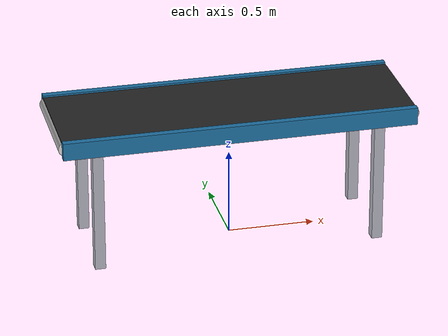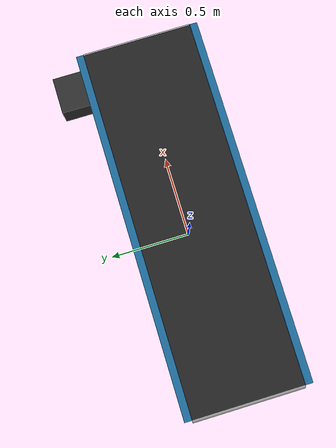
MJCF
<mujoco model="industrial_conveyor">
  <compiler angle="degree" coordinate="local"/>

  <asset>
    <material name="belt_mat" rgba="0.15 0.15 0.15 1" reflectance="0.05"/>
    <material name="frame_mat" rgba="0.12 0.45 0.65 1" reflectance="0.2"/>
    <material name="metal_mat" rgba="0.7 0.7 0.75 1" reflectance="0.5"/>
    <material name="motor_mat" rgba="0.2 0.2 0.2 1" reflectance="0.1"/>
    <material name="roller_mat" rgba="0.85 0.85 0.85 1" reflectance="0.4"/>
  </asset>

  <worldbody>
    <body name="custom_conveyor" pos="0 0 0">

      <geom name="g0" type="box" pos="0 0 0.8" size="1.0 0.3 0.01" material="belt_mat" mass="15" friction="1 0.005 0.0001"/>

      <geom name="rail_left" type="box" pos="0 0.32 0.77" size="1.0 0.02 0.05" material="frame_mat" mass="10"/>
      <geom name="rail_right" type="box" pos="0 -0.32 0.77" size="1.0 0.02 0.05" material="frame_mat" mass="10"/>

      <geom name="roller_front" type="cylinder" pos="0.98 0 0.77" size="0.04 0.3" euler="90 0 0" material="roller_mat" mass="2"/>
      <geom name="roller_back" type="cylinder" pos="-0.98 0 0.77" size="0.04 0.3" euler="90 0 0" material="roller_mat" mass="2"/>

      <geom name="roller_mid1" type="cylinder" pos="0.5 0 0.78" size="0.02 0.3" euler="90 0 0" material="metal_mat" mass="1"/>
      <geom name="roller_mid2" type="cylinder" pos="0.0 0 0.78" size="0.02 0.3" euler="90 0 0" material="metal_mat" mass="1"/>
      <geom name="roller_mid3" type="cylinder" pos="-0.5 0 0.78" size="0.02 0.3" euler="90 0 0" material="metal_mat" mass="1"/>

      <geom name="leg_fl" type="box" pos="0.8 0.25 0.36" size="0.03 0.03 0.36" material="metal_mat" mass="5"/>
      <geom name="leg_fr" type="box" pos="0.8 -0.25 0.36" size="0.03 0.03 0.36" material="metal_mat" mass="5"/>
      <geom name="leg_bl" type="box" pos="-0.8 0.25 0.36" size="0.03 0.03 0.36" material="metal_mat" mass="5"/>
      <geom name="leg_br" type="box" pos="-0.8 -0.25 0.36" size="0.03 0.03 0.36" material="metal_mat" mass="5"/>

      <body name="drive_motor" pos="0.85 0.42 0.65">
        <geom name="motor_box" type="box" size="0.1 0.08 0.08" material="motor_mat" mass="10"/>
        <geom name="motor_shaft" type="cylinder" pos="-0.05 -0.05 0" size="0.03 0.05" euler="90 0 0" material="metal_mat"/>
      </body>

    </body>
  </worldbody>
</mujoco>
